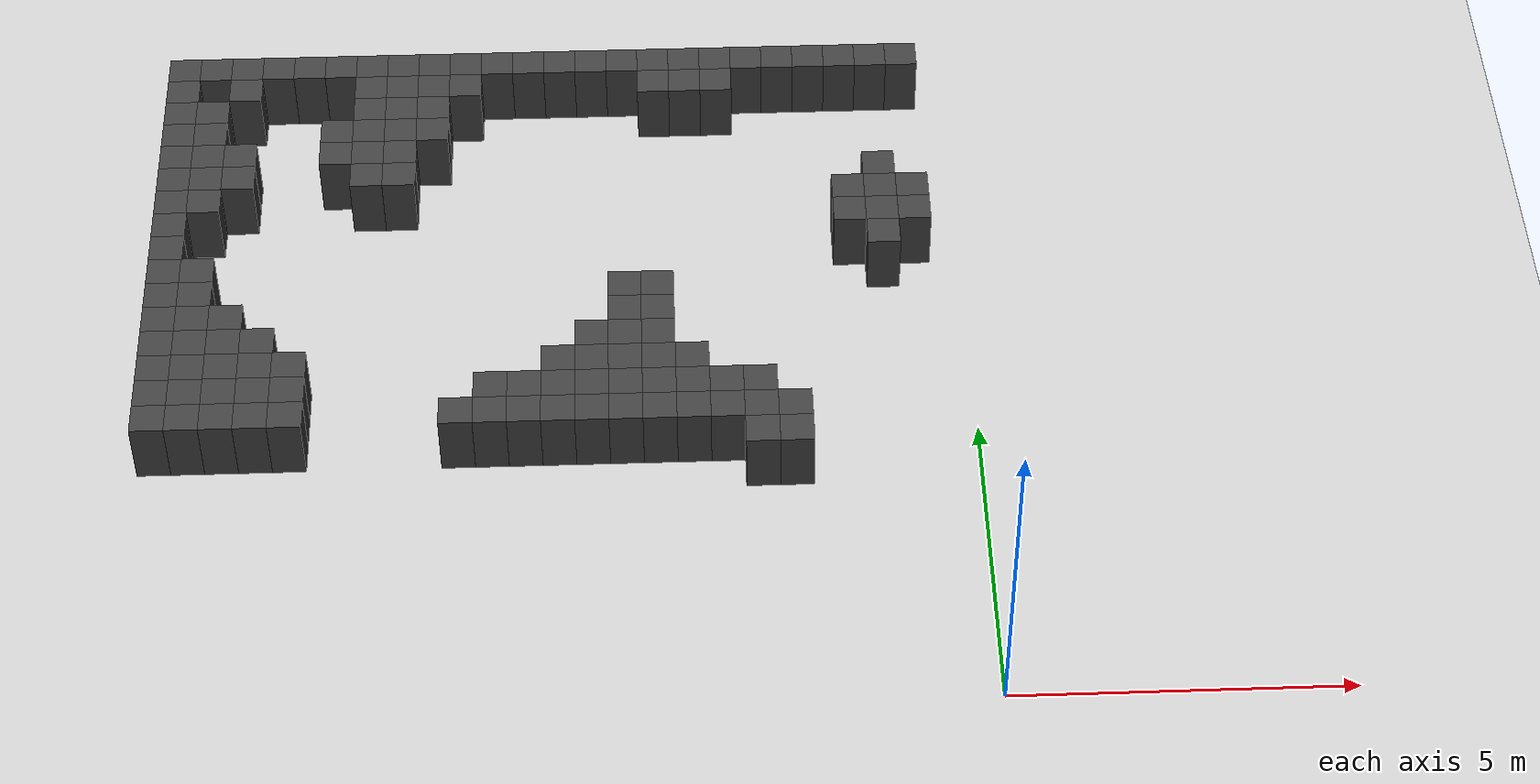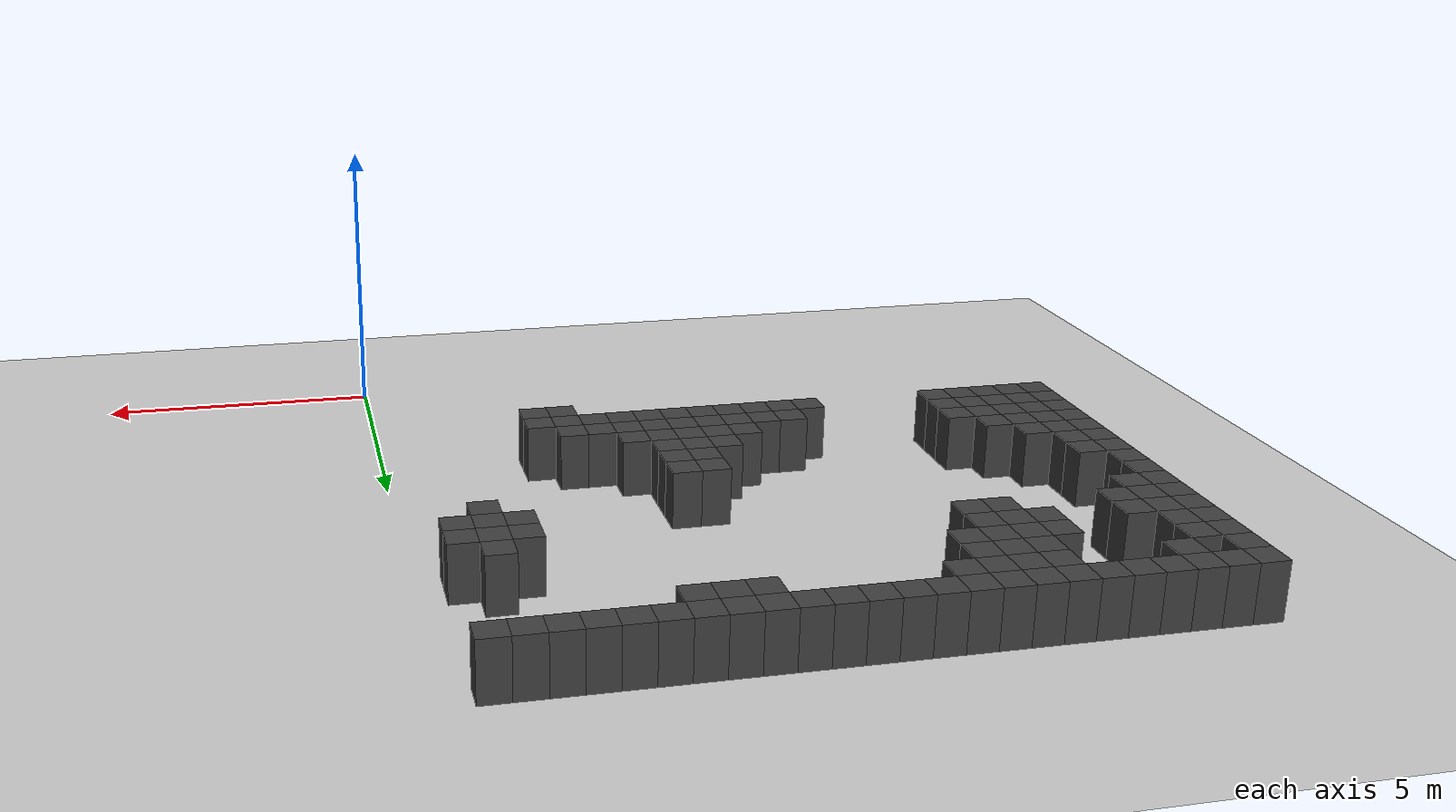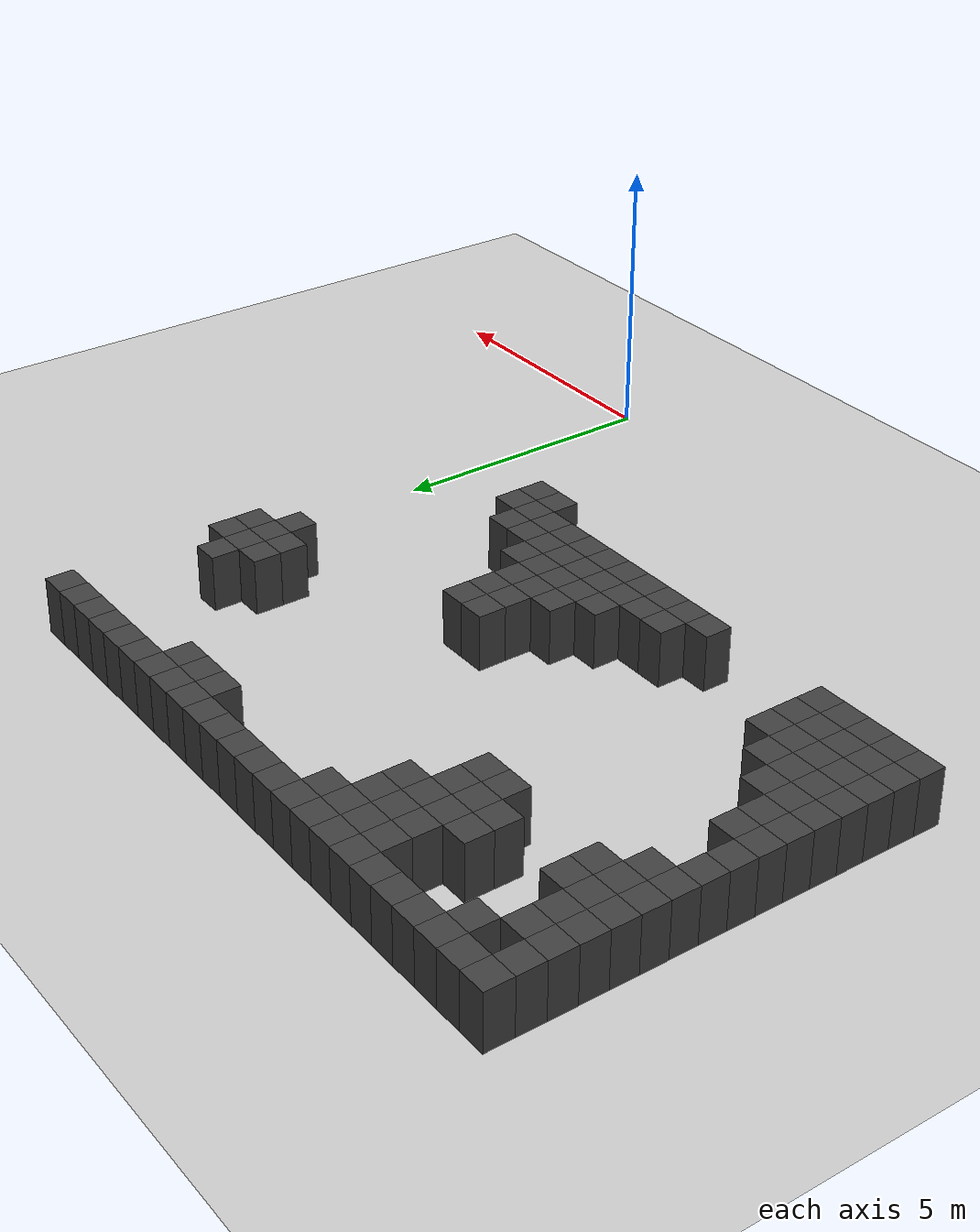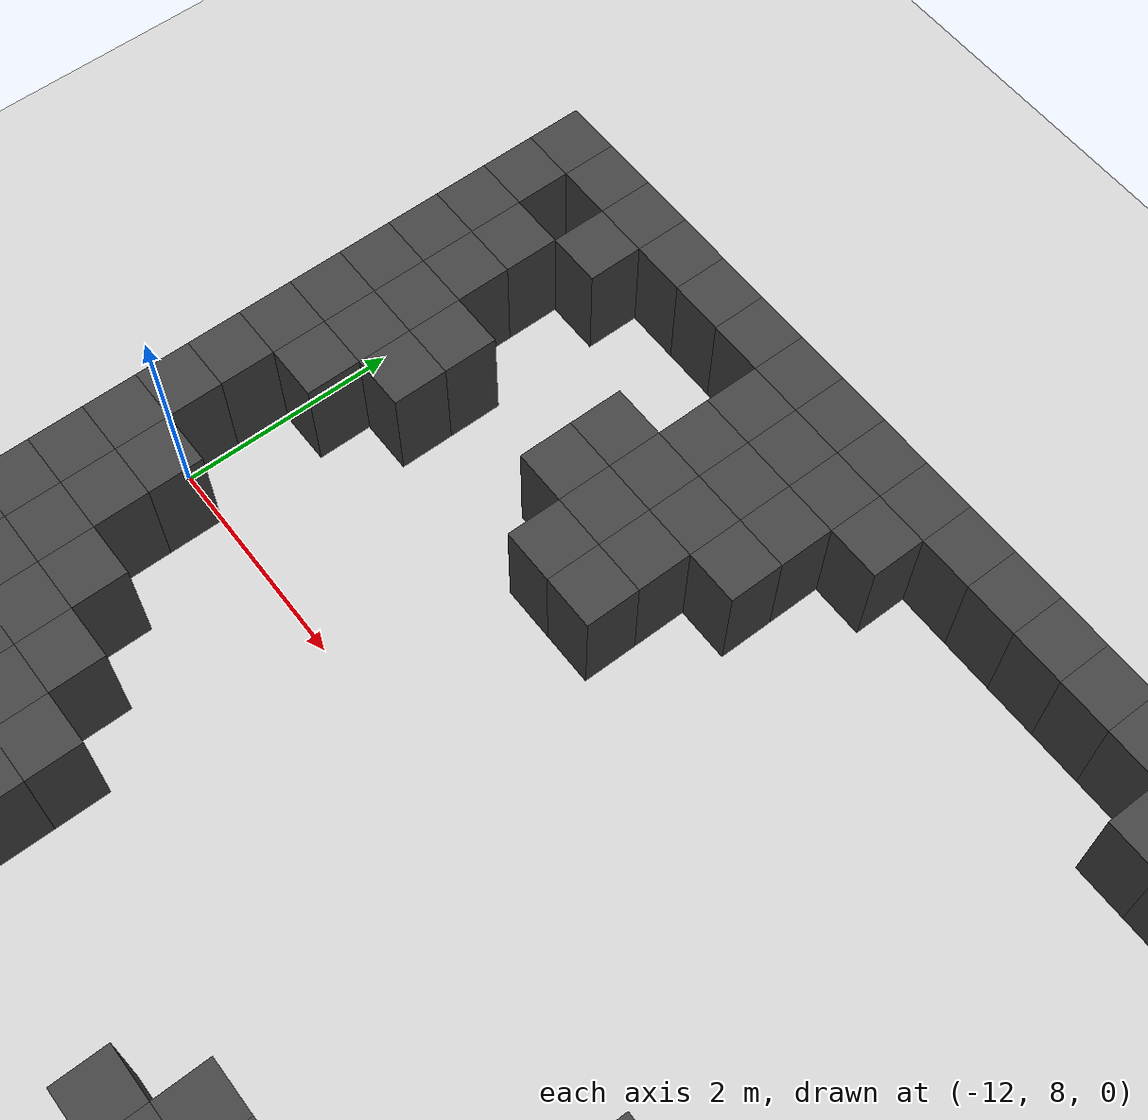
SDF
<sdf version="1.7">
 <world name="map_9544">
  <model name="ground_plane">
   <static>true</static>
   <link name="link">
    <collision name="collision">
     <geometry><plane><normal>0 0 1</normal><size>200 200</size></plane></geometry>
    </collision>
    <visual name="visual">
     <geometry><plane><normal>0 0 1</normal><size>200 200</size></plane></geometry>
     <material><ambient>0.8 0.8 0.8 1</ambient><diffuse>0.8 0.8 0.8 1</diffuse></material>
    </visual>
   </link>
  </model>
  <model name="maze_environment">
   <static>true</static>
   <link name="wall_0">
    <pose>-12.250 12.250 0.500 0 0 0</pose>
    <collision name="col"><geometry><box><size>0.5 0.5 1.0</size></box></geometry></collision>
    <visual name="vis">
     <geometry><box><size>0.5 0.5 1.0</size></box></geometry>
     <material><ambient>0.15 0.15 0.15 1</ambient><diffuse>0.25 0.25 0.25 1</diffuse></material>
    </visual>
   </link>
   <link name="wall_1">
    <pose>-11.750 12.250 0.500 0 0 0</pose>
    <collision name="col"><geometry><box><size>0.5 0.5 1.0</size></box></geometry></collision>
    <visual name="vis">
     <geometry><box><size>0.5 0.5 1.0</size></box></geometry>
     <material><ambient>0.15 0.15 0.15 1</ambient><diffuse>0.25 0.25 0.25 1</diffuse></material>
    </visual>
   </link>
   <link name="wall_2">
    <pose>-11.250 12.250 0.500 0 0 0</pose>
    <collision name="col"><geometry><box><size>0.5 0.5 1.0</size></box></geometry></collision>
    <visual name="vis">
     <geometry><box><size>0.5 0.5 1.0</size></box></geometry>
     <material><ambient>0.15 0.15 0.15 1</ambient><diffuse>0.25 0.25 0.25 1</diffuse></material>
    </visual>
   </link>
   <link name="wall_3">
    <pose>-10.750 12.250 0.500 0 0 0</pose>
    <collision name="col"><geometry><box><size>0.5 0.5 1.0</size></box></geometry></collision>
    <visual name="vis">
     <geometry><box><size>0.5 0.5 1.0</size></box></geometry>
     <material><ambient>0.15 0.15 0.15 1</ambient><diffuse>0.25 0.25 0.25 1</diffuse></material>
    </visual>
   </link>
   <link name="wall_4">
    <pose>-10.250 12.250 0.500 0 0 0</pose>
    <collision name="col"><geometry><box><size>0.5 0.5 1.0</size></box></geometry></collision>
    <visual name="vis">
     <geometry><box><size>0.5 0.5 1.0</size></box></geometry>
     <material><ambient>0.15 0.15 0.15 1</ambient><diffuse>0.25 0.25 0.25 1</diffuse></material>
    </visual>
   </link>
   <link name="wall_5">
    <pose>-9.750 12.250 0.500 0 0 0</pose>
    <collision name="col"><geometry><box><size>0.5 0.5 1.0</size></box></geometry></collision>
    <visual name="vis">
     <geometry><box><size>0.5 0.5 1.0</size></box></geometry>
     <material><ambient>0.15 0.15 0.15 1</ambient><diffuse>0.25 0.25 0.25 1</diffuse></material>
    </visual>
   </link>
   <link name="wall_6">
    <pose>-9.250 12.250 0.500 0 0 0</pose>
    <collision name="col"><geometry><box><size>0.5 0.5 1.0</size></box></geometry></collision>
    <visual name="vis">
     <geometry><box><size>0.5 0.5 1.0</size></box></geometry>
     <material><ambient>0.15 0.15 0.15 1</ambient><diffuse>0.25 0.25 0.25 1</diffuse></material>
    </visual>
   </link>
   <link name="wall_7">
    <pose>-8.750 12.250 0.500 0 0 0</pose>
    <collision name="col"><geometry><box><size>0.5 0.5 1.0</size></box></geometry></collision>
    <visual name="vis">
     <geometry><box><size>0.5 0.5 1.0</size></box></geometry>
     <material><ambient>0.15 0.15 0.15 1</ambient><diffuse>0.25 0.25 0.25 1</diffuse></material>
    </visual>
   </link>
   <link name="wall_8">
    <pose>-8.250 12.250 0.500 0 0 0</pose>
    <collision name="col"><geometry><box><size>0.5 0.5 1.0</size></box></geometry></collision>
    <visual name="vis">
     <geometry><box><size>0.5 0.5 1.0</size></box></geometry>
     <material><ambient>0.15 0.15 0.15 1</ambient><diffuse>0.25 0.25 0.25 1</diffuse></material>
    </visual>
   </link>
   <link name="wall_9">
    <pose>-7.750 12.250 0.500 0 0 0</pose>
    <collision name="col"><geometry><box><size>0.5 0.5 1.0</size></box></geometry></collision>
    <visual name="vis">
     <geometry><box><size>0.5 0.5 1.0</size></box></geometry>
     <material><ambient>0.15 0.15 0.15 1</ambient><diffuse>0.25 0.25 0.25 1</diffuse></material>
    </visual>
   </link>
   <link name="wall_10">
    <pose>-7.250 12.250 0.500 0 0 0</pose>
    <collision name="col"><geometry><box><size>0.5 0.5 1.0</size></box></geometry></collision>
    <visual name="vis">
     <geometry><box><size>0.5 0.5 1.0</size></box></geometry>
     <material><ambient>0.15 0.15 0.15 1</ambient><diffuse>0.25 0.25 0.25 1</diffuse></material>
    </visual>
   </link>
   <link name="wall_11">
    <pose>-6.750 12.250 0.500 0 0 0</pose>
    <collision name="col"><geometry><box><size>0.5 0.5 1.0</size></box></geometry></collision>
    <visual name="vis">
     <geometry><box><size>0.5 0.5 1.0</size></box></geometry>
     <material><ambient>0.15 0.15 0.15 1</ambient><diffuse>0.25 0.25 0.25 1</diffuse></material>
    </visual>
   </link>
   <link name="wall_12">
    <pose>-6.250 12.250 0.500 0 0 0</pose>
    <collision name="col"><geometry><box><size>0.5 0.5 1.0</size></box></geometry></collision>
    <visual name="vis">
     <geometry><box><size>0.5 0.5 1.0</size></box></geometry>
     <material><ambient>0.15 0.15 0.15 1</ambient><diffuse>0.25 0.25 0.25 1</diffuse></material>
    </visual>
   </link>
   <link name="wall_13">
    <pose>-5.750 12.250 0.500 0 0 0</pose>
    <collision name="col"><geometry><box><size>0.5 0.5 1.0</size></box></geometry></collision>
    <visual name="vis">
     <geometry><box><size>0.5 0.5 1.0</size></box></geometry>
     <material><ambient>0.15 0.15 0.15 1</ambient><diffuse>0.25 0.25 0.25 1</diffuse></material>
    </visual>
   </link>
   <link name="wall_14">
    <pose>-5.250 12.250 0.500 0 0 0</pose>
    <collision name="col"><geometry><box><size>0.5 0.5 1.0</size></box></geometry></collision>
    <visual name="vis">
     <geometry><box><size>0.5 0.5 1.0</size></box></geometry>
     <material><ambient>0.15 0.15 0.15 1</ambient><diffuse>0.25 0.25 0.25 1</diffuse></material>
    </visual>
   </link>
   <link name="wall_15">
    <pose>-4.750 12.250 0.500 0 0 0</pose>
    <collision name="col"><geometry><box><size>0.5 0.5 1.0</size></box></geometry></collision>
    <visual name="vis">
     <geometry><box><size>0.5 0.5 1.0</size></box></geometry>
     <material><ambient>0.15 0.15 0.15 1</ambient><diffuse>0.25 0.25 0.25 1</diffuse></material>
    </visual>
   </link>
   <link name="wall_16">
    <pose>-4.250 12.250 0.500 0 0 0</pose>
    <collision name="col"><geometry><box><size>0.5 0.5 1.0</size></box></geometry></collision>
    <visual name="vis">
     <geometry><box><size>0.5 0.5 1.0</size></box></geometry>
     <material><ambient>0.15 0.15 0.15 1</ambient><diffuse>0.25 0.25 0.25 1</diffuse></material>
    </visual>
   </link>
   <link name="wall_17">
    <pose>-3.750 12.250 0.500 0 0 0</pose>
    <collision name="col"><geometry><box><size>0.5 0.5 1.0</size></box></geometry></collision>
    <visual name="vis">
     <geometry><box><size>0.5 0.5 1.0</size></box></geometry>
     <material><ambient>0.15 0.15 0.15 1</ambient><diffuse>0.25 0.25 0.25 1</diffuse></material>
    </visual>
   </link>
   <link name="wall_18">
    <pose>-3.250 12.250 0.500 0 0 0</pose>
    <collision name="col"><geometry><box><size>0.5 0.5 1.0</size></box></geometry></collision>
    <visual name="vis">
     <geometry><box><size>0.5 0.5 1.0</size></box></geometry>
     <material><ambient>0.15 0.15 0.15 1</ambient><diffuse>0.25 0.25 0.25 1</diffuse></material>
    </visual>
   </link>
   <link name="wall_19">
    <pose>-2.750 12.250 0.500 0 0 0</pose>
    <collision name="col"><geometry><box><size>0.5 0.5 1.0</size></box></geometry></collision>
    <visual name="vis">
     <geometry><box><size>0.5 0.5 1.0</size></box></geometry>
     <material><ambient>0.15 0.15 0.15 1</ambient><diffuse>0.25 0.25 0.25 1</diffuse></material>
    </visual>
   </link>
   <link name="wall_20">
    <pose>-2.250 12.250 0.500 0 0 0</pose>
    <collision name="col"><geometry><box><size>0.5 0.5 1.0</size></box></geometry></collision>
    <visual name="vis">
     <geometry><box><size>0.5 0.5 1.0</size></box></geometry>
     <material><ambient>0.15 0.15 0.15 1</ambient><diffuse>0.25 0.25 0.25 1</diffuse></material>
    </visual>
   </link>
   <link name="wall_21">
    <pose>-1.750 12.250 0.500 0 0 0</pose>
    <collision name="col"><geometry><box><size>0.5 0.5 1.0</size></box></geometry></collision>
    <visual name="vis">
     <geometry><box><size>0.5 0.5 1.0</size></box></geometry>
     <material><ambient>0.15 0.15 0.15 1</ambient><diffuse>0.25 0.25 0.25 1</diffuse></material>
    </visual>
   </link>
   <link name="wall_22">
    <pose>-1.250 12.250 0.500 0 0 0</pose>
    <collision name="col"><geometry><box><size>0.5 0.5 1.0</size></box></geometry></collision>
    <visual name="vis">
     <geometry><box><size>0.5 0.5 1.0</size></box></geometry>
     <material><ambient>0.15 0.15 0.15 1</ambient><diffuse>0.25 0.25 0.25 1</diffuse></material>
    </visual>
   </link>
   <link name="wall_23">
    <pose>-0.750 12.250 0.500 0 0 0</pose>
    <collision name="col"><geometry><box><size>0.5 0.5 1.0</size></box></geometry></collision>
    <visual name="vis">
     <geometry><box><size>0.5 0.5 1.0</size></box></geometry>
     <material><ambient>0.15 0.15 0.15 1</ambient><diffuse>0.25 0.25 0.25 1</diffuse></material>
    </visual>
   </link>
   <link name="wall_50">
    <pose>-12.250 11.750 0.500 0 0 0</pose>
    <collision name="col"><geometry><box><size>0.5 0.5 1.0</size></box></geometry></collision>
    <visual name="vis">
     <geometry><box><size>0.5 0.5 1.0</size></box></geometry>
     <material><ambient>0.15 0.15 0.15 1</ambient><diffuse>0.25 0.25 0.25 1</diffuse></material>
    </visual>
   </link>
   <link name="wall_51">
    <pose>-11.250 11.750 0.500 0 0 0</pose>
    <collision name="col"><geometry><box><size>0.5 0.5 1.0</size></box></geometry></collision>
    <visual name="vis">
     <geometry><box><size>0.5 0.5 1.0</size></box></geometry>
     <material><ambient>0.15 0.15 0.15 1</ambient><diffuse>0.25 0.25 0.25 1</diffuse></material>
    </visual>
   </link>
   <link name="wall_52">
    <pose>-9.250 11.750 0.500 0 0 0</pose>
    <collision name="col"><geometry><box><size>0.5 0.5 1.0</size></box></geometry></collision>
    <visual name="vis">
     <geometry><box><size>0.5 0.5 1.0</size></box></geometry>
     <material><ambient>0.15 0.15 0.15 1</ambient><diffuse>0.25 0.25 0.25 1</diffuse></material>
    </visual>
   </link>
   <link name="wall_53">
    <pose>-8.750 11.750 0.500 0 0 0</pose>
    <collision name="col"><geometry><box><size>0.5 0.5 1.0</size></box></geometry></collision>
    <visual name="vis">
     <geometry><box><size>0.5 0.5 1.0</size></box></geometry>
     <material><ambient>0.15 0.15 0.15 1</ambient><diffuse>0.25 0.25 0.25 1</diffuse></material>
    </visual>
   </link>
   <link name="wall_54">
    <pose>-8.250 11.750 0.500 0 0 0</pose>
    <collision name="col"><geometry><box><size>0.5 0.5 1.0</size></box></geometry></collision>
    <visual name="vis">
     <geometry><box><size>0.5 0.5 1.0</size></box></geometry>
     <material><ambient>0.15 0.15 0.15 1</ambient><diffuse>0.25 0.25 0.25 1</diffuse></material>
    </visual>
   </link>
   <link name="wall_55">
    <pose>-7.750 11.750 0.500 0 0 0</pose>
    <collision name="col"><geometry><box><size>0.5 0.5 1.0</size></box></geometry></collision>
    <visual name="vis">
     <geometry><box><size>0.5 0.5 1.0</size></box></geometry>
     <material><ambient>0.15 0.15 0.15 1</ambient><diffuse>0.25 0.25 0.25 1</diffuse></material>
    </visual>
   </link>
   <link name="wall_56">
    <pose>-4.750 11.750 0.500 0 0 0</pose>
    <collision name="col"><geometry><box><size>0.5 0.5 1.0</size></box></geometry></collision>
    <visual name="vis">
     <geometry><box><size>0.5 0.5 1.0</size></box></geometry>
     <material><ambient>0.15 0.15 0.15 1</ambient><diffuse>0.25 0.25 0.25 1</diffuse></material>
    </visual>
   </link>
   <link name="wall_57">
    <pose>-4.250 11.750 0.500 0 0 0</pose>
    <collision name="col"><geometry><box><size>0.5 0.5 1.0</size></box></geometry></collision>
    <visual name="vis">
     <geometry><box><size>0.5 0.5 1.0</size></box></geometry>
     <material><ambient>0.15 0.15 0.15 1</ambient><diffuse>0.25 0.25 0.25 1</diffuse></material>
    </visual>
   </link>
   <link name="wall_58">
    <pose>-3.750 11.750 0.500 0 0 0</pose>
    <collision name="col"><geometry><box><size>0.5 0.5 1.0</size></box></geometry></collision>
    <visual name="vis">
     <geometry><box><size>0.5 0.5 1.0</size></box></geometry>
     <material><ambient>0.15 0.15 0.15 1</ambient><diffuse>0.25 0.25 0.25 1</diffuse></material>
    </visual>
   </link>
   <link name="wall_75">
    <pose>-12.250 11.250 0.500 0 0 0</pose>
    <collision name="col"><geometry><box><size>0.5 0.5 1.0</size></box></geometry></collision>
    <visual name="vis">
     <geometry><box><size>0.5 0.5 1.0</size></box></geometry>
     <material><ambient>0.15 0.15 0.15 1</ambient><diffuse>0.25 0.25 0.25 1</diffuse></material>
    </visual>
   </link>
   <link name="wall_76">
    <pose>-11.750 11.250 0.500 0 0 0</pose>
    <collision name="col"><geometry><box><size>0.5 0.5 1.0</size></box></geometry></collision>
    <visual name="vis">
     <geometry><box><size>0.5 0.5 1.0</size></box></geometry>
     <material><ambient>0.15 0.15 0.15 1</ambient><diffuse>0.25 0.25 0.25 1</diffuse></material>
    </visual>
   </link>
   <link name="wall_77">
    <pose>-9.250 11.250 0.500 0 0 0</pose>
    <collision name="col"><geometry><box><size>0.5 0.5 1.0</size></box></geometry></collision>
    <visual name="vis">
     <geometry><box><size>0.5 0.5 1.0</size></box></geometry>
     <material><ambient>0.15 0.15 0.15 1</ambient><diffuse>0.25 0.25 0.25 1</diffuse></material>
    </visual>
   </link>
   <link name="wall_78">
    <pose>-8.750 11.250 0.500 0 0 0</pose>
    <collision name="col"><geometry><box><size>0.5 0.5 1.0</size></box></geometry></collision>
    <visual name="vis">
     <geometry><box><size>0.5 0.5 1.0</size></box></geometry>
     <material><ambient>0.15 0.15 0.15 1</ambient><diffuse>0.25 0.25 0.25 1</diffuse></material>
    </visual>
   </link>
   <link name="wall_79">
    <pose>-8.250 11.250 0.500 0 0 0</pose>
    <collision name="col"><geometry><box><size>0.5 0.5 1.0</size></box></geometry></collision>
    <visual name="vis">
     <geometry><box><size>0.5 0.5 1.0</size></box></geometry>
     <material><ambient>0.15 0.15 0.15 1</ambient><diffuse>0.25 0.25 0.25 1</diffuse></material>
    </visual>
   </link>
   <link name="wall_91">
    <pose>-12.250 10.750 0.500 0 0 0</pose>
    <collision name="col"><geometry><box><size>0.5 0.5 1.0</size></box></geometry></collision>
    <visual name="vis">
     <geometry><box><size>0.5 0.5 1.0</size></box></geometry>
     <material><ambient>0.15 0.15 0.15 1</ambient><diffuse>0.25 0.25 0.25 1</diffuse></material>
    </visual>
   </link>
   <link name="wall_92">
    <pose>-11.750 10.750 0.500 0 0 0</pose>
    <collision name="col"><geometry><box><size>0.5 0.5 1.0</size></box></geometry></collision>
    <visual name="vis">
     <geometry><box><size>0.5 0.5 1.0</size></box></geometry>
     <material><ambient>0.15 0.15 0.15 1</ambient><diffuse>0.25 0.25 0.25 1</diffuse></material>
    </visual>
   </link>
   <link name="wall_93">
    <pose>-9.750 10.750 0.500 0 0 0</pose>
    <collision name="col"><geometry><box><size>0.5 0.5 1.0</size></box></geometry></collision>
    <visual name="vis">
     <geometry><box><size>0.5 0.5 1.0</size></box></geometry>
     <material><ambient>0.15 0.15 0.15 1</ambient><diffuse>0.25 0.25 0.25 1</diffuse></material>
    </visual>
   </link>
   <link name="wall_94">
    <pose>-9.250 10.750 0.500 0 0 0</pose>
    <collision name="col"><geometry><box><size>0.5 0.5 1.0</size></box></geometry></collision>
    <visual name="vis">
     <geometry><box><size>0.5 0.5 1.0</size></box></geometry>
     <material><ambient>0.15 0.15 0.15 1</ambient><diffuse>0.25 0.25 0.25 1</diffuse></material>
    </visual>
   </link>
   <link name="wall_95">
    <pose>-8.750 10.750 0.500 0 0 0</pose>
    <collision name="col"><geometry><box><size>0.5 0.5 1.0</size></box></geometry></collision>
    <visual name="vis">
     <geometry><box><size>0.5 0.5 1.0</size></box></geometry>
     <material><ambient>0.15 0.15 0.15 1</ambient><diffuse>0.25 0.25 0.25 1</diffuse></material>
    </visual>
   </link>
   <link name="wall_96">
    <pose>-8.250 10.750 0.500 0 0 0</pose>
    <collision name="col"><geometry><box><size>0.5 0.5 1.0</size></box></geometry></collision>
    <visual name="vis">
     <geometry><box><size>0.5 0.5 1.0</size></box></geometry>
     <material><ambient>0.15 0.15 0.15 1</ambient><diffuse>0.25 0.25 0.25 1</diffuse></material>
    </visual>
   </link>
   <link name="wall_105">
    <pose>-12.250 10.250 0.500 0 0 0</pose>
    <collision name="col"><geometry><box><size>0.5 0.5 1.0</size></box></geometry></collision>
    <visual name="vis">
     <geometry><box><size>0.5 0.5 1.0</size></box></geometry>
     <material><ambient>0.15 0.15 0.15 1</ambient><diffuse>0.25 0.25 0.25 1</diffuse></material>
    </visual>
   </link>
   <link name="wall_106">
    <pose>-11.750 10.250 0.500 0 0 0</pose>
    <collision name="col"><geometry><box><size>0.5 0.5 1.0</size></box></geometry></collision>
    <visual name="vis">
     <geometry><box><size>0.5 0.5 1.0</size></box></geometry>
     <material><ambient>0.15 0.15 0.15 1</ambient><diffuse>0.25 0.25 0.25 1</diffuse></material>
    </visual>
   </link>
   <link name="wall_107">
    <pose>-11.250 10.250 0.500 0 0 0</pose>
    <collision name="col"><geometry><box><size>0.5 0.5 1.0</size></box></geometry></collision>
    <visual name="vis">
     <geometry><box><size>0.5 0.5 1.0</size></box></geometry>
     <material><ambient>0.15 0.15 0.15 1</ambient><diffuse>0.25 0.25 0.25 1</diffuse></material>
    </visual>
   </link>
   <link name="wall_108">
    <pose>-9.750 10.250 0.500 0 0 0</pose>
    <collision name="col"><geometry><box><size>0.5 0.5 1.0</size></box></geometry></collision>
    <visual name="vis">
     <geometry><box><size>0.5 0.5 1.0</size></box></geometry>
     <material><ambient>0.15 0.15 0.15 1</ambient><diffuse>0.25 0.25 0.25 1</diffuse></material>
    </visual>
   </link>
   <link name="wall_109">
    <pose>-9.250 10.250 0.500 0 0 0</pose>
    <collision name="col"><geometry><box><size>0.5 0.5 1.0</size></box></geometry></collision>
    <visual name="vis">
     <geometry><box><size>0.5 0.5 1.0</size></box></geometry>
     <material><ambient>0.15 0.15 0.15 1</ambient><diffuse>0.25 0.25 0.25 1</diffuse></material>
    </visual>
   </link>
   <link name="wall_110">
    <pose>-8.750 10.250 0.500 0 0 0</pose>
    <collision name="col"><geometry><box><size>0.5 0.5 1.0</size></box></geometry></collision>
    <visual name="vis">
     <geometry><box><size>0.5 0.5 1.0</size></box></geometry>
     <material><ambient>0.15 0.15 0.15 1</ambient><diffuse>0.25 0.25 0.25 1</diffuse></material>
    </visual>
   </link>
   <link name="wall_117">
    <pose>-12.250 9.750 0.500 0 0 0</pose>
    <collision name="col"><geometry><box><size>0.5 0.5 1.0</size></box></geometry></collision>
    <visual name="vis">
     <geometry><box><size>0.5 0.5 1.0</size></box></geometry>
     <material><ambient>0.15 0.15 0.15 1</ambient><diffuse>0.25 0.25 0.25 1</diffuse></material>
    </visual>
   </link>
   <link name="wall_118">
    <pose>-11.750 9.750 0.500 0 0 0</pose>
    <collision name="col"><geometry><box><size>0.5 0.5 1.0</size></box></geometry></collision>
    <visual name="vis">
     <geometry><box><size>0.5 0.5 1.0</size></box></geometry>
     <material><ambient>0.15 0.15 0.15 1</ambient><diffuse>0.25 0.25 0.25 1</diffuse></material>
    </visual>
   </link>
   <link name="wall_119">
    <pose>-11.250 9.750 0.500 0 0 0</pose>
    <collision name="col"><geometry><box><size>0.5 0.5 1.0</size></box></geometry></collision>
    <visual name="vis">
     <geometry><box><size>0.5 0.5 1.0</size></box></geometry>
     <material><ambient>0.15 0.15 0.15 1</ambient><diffuse>0.25 0.25 0.25 1</diffuse></material>
    </visual>
   </link>
   <link name="wall_120">
    <pose>-9.250 9.750 0.500 0 0 0</pose>
    <collision name="col"><geometry><box><size>0.5 0.5 1.0</size></box></geometry></collision>
    <visual name="vis">
     <geometry><box><size>0.5 0.5 1.0</size></box></geometry>
     <material><ambient>0.15 0.15 0.15 1</ambient><diffuse>0.25 0.25 0.25 1</diffuse></material>
    </visual>
   </link>
   <link name="wall_121">
    <pose>-8.750 9.750 0.500 0 0 0</pose>
    <collision name="col"><geometry><box><size>0.5 0.5 1.0</size></box></geometry></collision>
    <visual name="vis">
     <geometry><box><size>0.5 0.5 1.0</size></box></geometry>
     <material><ambient>0.15 0.15 0.15 1</ambient><diffuse>0.25 0.25 0.25 1</diffuse></material>
    </visual>
   </link>
   <link name="wall_122">
    <pose>-1.250 9.750 0.500 0 0 0</pose>
    <collision name="col"><geometry><box><size>0.5 0.5 1.0</size></box></geometry></collision>
    <visual name="vis">
     <geometry><box><size>0.5 0.5 1.0</size></box></geometry>
     <material><ambient>0.15 0.15 0.15 1</ambient><diffuse>0.25 0.25 0.25 1</diffuse></material>
    </visual>
   </link>
   <link name="wall_126">
    <pose>-12.250 9.250 0.500 0 0 0</pose>
    <collision name="col"><geometry><box><size>0.5 0.5 1.0</size></box></geometry></collision>
    <visual name="vis">
     <geometry><box><size>0.5 0.5 1.0</size></box></geometry>
     <material><ambient>0.15 0.15 0.15 1</ambient><diffuse>0.25 0.25 0.25 1</diffuse></material>
    </visual>
   </link>
   <link name="wall_127">
    <pose>-11.750 9.250 0.500 0 0 0</pose>
    <collision name="col"><geometry><box><size>0.5 0.5 1.0</size></box></geometry></collision>
    <visual name="vis">
     <geometry><box><size>0.5 0.5 1.0</size></box></geometry>
     <material><ambient>0.15 0.15 0.15 1</ambient><diffuse>0.25 0.25 0.25 1</diffuse></material>
    </visual>
   </link>
   <link name="wall_128">
    <pose>-1.750 9.250 0.500 0 0 0</pose>
    <collision name="col"><geometry><box><size>0.5 0.5 1.0</size></box></geometry></collision>
    <visual name="vis">
     <geometry><box><size>0.5 0.5 1.0</size></box></geometry>
     <material><ambient>0.15 0.15 0.15 1</ambient><diffuse>0.25 0.25 0.25 1</diffuse></material>
    </visual>
   </link>
   <link name="wall_129">
    <pose>-1.250 9.250 0.500 0 0 0</pose>
    <collision name="col"><geometry><box><size>0.5 0.5 1.0</size></box></geometry></collision>
    <visual name="vis">
     <geometry><box><size>0.5 0.5 1.0</size></box></geometry>
     <material><ambient>0.15 0.15 0.15 1</ambient><diffuse>0.25 0.25 0.25 1</diffuse></material>
    </visual>
   </link>
   <link name="wall_130">
    <pose>-0.750 9.250 0.500 0 0 0</pose>
    <collision name="col"><geometry><box><size>0.5 0.5 1.0</size></box></geometry></collision>
    <visual name="vis">
     <geometry><box><size>0.5 0.5 1.0</size></box></geometry>
     <material><ambient>0.15 0.15 0.15 1</ambient><diffuse>0.25 0.25 0.25 1</diffuse></material>
    </visual>
   </link>
   <link name="wall_135">
    <pose>-12.250 8.750 0.500 0 0 0</pose>
    <collision name="col"><geometry><box><size>0.5 0.5 1.0</size></box></geometry></collision>
    <visual name="vis">
     <geometry><box><size>0.5 0.5 1.0</size></box></geometry>
     <material><ambient>0.15 0.15 0.15 1</ambient><diffuse>0.25 0.25 0.25 1</diffuse></material>
    </visual>
   </link>
   <link name="wall_136">
    <pose>-1.750 8.750 0.500 0 0 0</pose>
    <collision name="col"><geometry><box><size>0.5 0.5 1.0</size></box></geometry></collision>
    <visual name="vis">
     <geometry><box><size>0.5 0.5 1.0</size></box></geometry>
     <material><ambient>0.15 0.15 0.15 1</ambient><diffuse>0.25 0.25 0.25 1</diffuse></material>
    </visual>
   </link>
   <link name="wall_137">
    <pose>-1.250 8.750 0.500 0 0 0</pose>
    <collision name="col"><geometry><box><size>0.5 0.5 1.0</size></box></geometry></collision>
    <visual name="vis">
     <geometry><box><size>0.5 0.5 1.0</size></box></geometry>
     <material><ambient>0.15 0.15 0.15 1</ambient><diffuse>0.25 0.25 0.25 1</diffuse></material>
    </visual>
   </link>
   <link name="wall_138">
    <pose>-0.750 8.750 0.500 0 0 0</pose>
    <collision name="col"><geometry><box><size>0.5 0.5 1.0</size></box></geometry></collision>
    <visual name="vis">
     <geometry><box><size>0.5 0.5 1.0</size></box></geometry>
     <material><ambient>0.15 0.15 0.15 1</ambient><diffuse>0.25 0.25 0.25 1</diffuse></material>
    </visual>
   </link>
   <link name="wall_144">
    <pose>-12.250 8.250 0.500 0 0 0</pose>
    <collision name="col"><geometry><box><size>0.5 0.5 1.0</size></box></geometry></collision>
    <visual name="vis">
     <geometry><box><size>0.5 0.5 1.0</size></box></geometry>
     <material><ambient>0.15 0.15 0.15 1</ambient><diffuse>0.25 0.25 0.25 1</diffuse></material>
    </visual>
   </link>
   <link name="wall_145">
    <pose>-1.250 8.250 0.500 0 0 0</pose>
    <collision name="col"><geometry><box><size>0.5 0.5 1.0</size></box></geometry></collision>
    <visual name="vis">
     <geometry><box><size>0.5 0.5 1.0</size></box></geometry>
     <material><ambient>0.15 0.15 0.15 1</ambient><diffuse>0.25 0.25 0.25 1</diffuse></material>
    </visual>
   </link>
   <link name="wall_154">
    <pose>-12.250 7.750 0.500 0 0 0</pose>
    <collision name="col"><geometry><box><size>0.5 0.5 1.0</size></box></geometry></collision>
    <visual name="vis">
     <geometry><box><size>0.5 0.5 1.0</size></box></geometry>
     <material><ambient>0.15 0.15 0.15 1</ambient><diffuse>0.25 0.25 0.25 1</diffuse></material>
    </visual>
   </link>
   <link name="wall_155">
    <pose>-11.750 7.750 0.500 0 0 0</pose>
    <collision name="col"><geometry><box><size>0.5 0.5 1.0</size></box></geometry></collision>
    <visual name="vis">
     <geometry><box><size>0.5 0.5 1.0</size></box></geometry>
     <material><ambient>0.15 0.15 0.15 1</ambient><diffuse>0.25 0.25 0.25 1</diffuse></material>
    </visual>
   </link>
   <link name="wall_165">
    <pose>-12.250 7.250 0.500 0 0 0</pose>
    <collision name="col"><geometry><box><size>0.5 0.5 1.0</size></box></geometry></collision>
    <visual name="vis">
     <geometry><box><size>0.5 0.5 1.0</size></box></geometry>
     <material><ambient>0.15 0.15 0.15 1</ambient><diffuse>0.25 0.25 0.25 1</diffuse></material>
    </visual>
   </link>
   <link name="wall_166">
    <pose>-11.750 7.250 0.500 0 0 0</pose>
    <collision name="col"><geometry><box><size>0.5 0.5 1.0</size></box></geometry></collision>
    <visual name="vis">
     <geometry><box><size>0.5 0.5 1.0</size></box></geometry>
     <material><ambient>0.15 0.15 0.15 1</ambient><diffuse>0.25 0.25 0.25 1</diffuse></material>
    </visual>
   </link>
   <link name="wall_167">
    <pose>-5.250 7.250 0.500 0 0 0</pose>
    <collision name="col"><geometry><box><size>0.5 0.5 1.0</size></box></geometry></collision>
    <visual name="vis">
     <geometry><box><size>0.5 0.5 1.0</size></box></geometry>
     <material><ambient>0.15 0.15 0.15 1</ambient><diffuse>0.25 0.25 0.25 1</diffuse></material>
    </visual>
   </link>
   <link name="wall_168">
    <pose>-4.750 7.250 0.500 0 0 0</pose>
    <collision name="col"><geometry><box><size>0.5 0.5 1.0</size></box></geometry></collision>
    <visual name="vis">
     <geometry><box><size>0.5 0.5 1.0</size></box></geometry>
     <material><ambient>0.15 0.15 0.15 1</ambient><diffuse>0.25 0.25 0.25 1</diffuse></material>
    </visual>
   </link>
   <link name="wall_176">
    <pose>-12.250 6.750 0.500 0 0 0</pose>
    <collision name="col"><geometry><box><size>0.5 0.5 1.0</size></box></geometry></collision>
    <visual name="vis">
     <geometry><box><size>0.5 0.5 1.0</size></box></geometry>
     <material><ambient>0.15 0.15 0.15 1</ambient><diffuse>0.25 0.25 0.25 1</diffuse></material>
    </visual>
   </link>
   <link name="wall_177">
    <pose>-11.750 6.750 0.500 0 0 0</pose>
    <collision name="col"><geometry><box><size>0.5 0.5 1.0</size></box></geometry></collision>
    <visual name="vis">
     <geometry><box><size>0.5 0.5 1.0</size></box></geometry>
     <material><ambient>0.15 0.15 0.15 1</ambient><diffuse>0.25 0.25 0.25 1</diffuse></material>
    </visual>
   </link>
   <link name="wall_178">
    <pose>-11.250 6.750 0.500 0 0 0</pose>
    <collision name="col"><geometry><box><size>0.5 0.5 1.0</size></box></geometry></collision>
    <visual name="vis">
     <geometry><box><size>0.5 0.5 1.0</size></box></geometry>
     <material><ambient>0.15 0.15 0.15 1</ambient><diffuse>0.25 0.25 0.25 1</diffuse></material>
    </visual>
   </link>
   <link name="wall_179">
    <pose>-5.250 6.750 0.500 0 0 0</pose>
    <collision name="col"><geometry><box><size>0.5 0.5 1.0</size></box></geometry></collision>
    <visual name="vis">
     <geometry><box><size>0.5 0.5 1.0</size></box></geometry>
     <material><ambient>0.15 0.15 0.15 1</ambient><diffuse>0.25 0.25 0.25 1</diffuse></material>
    </visual>
   </link>
   <link name="wall_180">
    <pose>-4.750 6.750 0.500 0 0 0</pose>
    <collision name="col"><geometry><box><size>0.5 0.5 1.0</size></box></geometry></collision>
    <visual name="vis">
     <geometry><box><size>0.5 0.5 1.0</size></box></geometry>
     <material><ambient>0.15 0.15 0.15 1</ambient><diffuse>0.25 0.25 0.25 1</diffuse></material>
    </visual>
   </link>
   <link name="wall_189">
    <pose>-12.250 6.250 0.500 0 0 0</pose>
    <collision name="col"><geometry><box><size>0.5 0.5 1.0</size></box></geometry></collision>
    <visual name="vis">
     <geometry><box><size>0.5 0.5 1.0</size></box></geometry>
     <material><ambient>0.15 0.15 0.15 1</ambient><diffuse>0.25 0.25 0.25 1</diffuse></material>
    </visual>
   </link>
   <link name="wall_190">
    <pose>-11.750 6.250 0.500 0 0 0</pose>
    <collision name="col"><geometry><box><size>0.5 0.5 1.0</size></box></geometry></collision>
    <visual name="vis">
     <geometry><box><size>0.5 0.5 1.0</size></box></geometry>
     <material><ambient>0.15 0.15 0.15 1</ambient><diffuse>0.25 0.25 0.25 1</diffuse></material>
    </visual>
   </link>
   <link name="wall_191">
    <pose>-11.250 6.250 0.500 0 0 0</pose>
    <collision name="col"><geometry><box><size>0.5 0.5 1.0</size></box></geometry></collision>
    <visual name="vis">
     <geometry><box><size>0.5 0.5 1.0</size></box></geometry>
     <material><ambient>0.15 0.15 0.15 1</ambient><diffuse>0.25 0.25 0.25 1</diffuse></material>
    </visual>
   </link>
   <link name="wall_192">
    <pose>-10.750 6.250 0.500 0 0 0</pose>
    <collision name="col"><geometry><box><size>0.5 0.5 1.0</size></box></geometry></collision>
    <visual name="vis">
     <geometry><box><size>0.5 0.5 1.0</size></box></geometry>
     <material><ambient>0.15 0.15 0.15 1</ambient><diffuse>0.25 0.25 0.25 1</diffuse></material>
    </visual>
   </link>
   <link name="wall_193">
    <pose>-5.750 6.250 0.500 0 0 0</pose>
    <collision name="col"><geometry><box><size>0.5 0.5 1.0</size></box></geometry></collision>
    <visual name="vis">
     <geometry><box><size>0.5 0.5 1.0</size></box></geometry>
     <material><ambient>0.15 0.15 0.15 1</ambient><diffuse>0.25 0.25 0.25 1</diffuse></material>
    </visual>
   </link>
   <link name="wall_194">
    <pose>-5.250 6.250 0.500 0 0 0</pose>
    <collision name="col"><geometry><box><size>0.5 0.5 1.0</size></box></geometry></collision>
    <visual name="vis">
     <geometry><box><size>0.5 0.5 1.0</size></box></geometry>
     <material><ambient>0.15 0.15 0.15 1</ambient><diffuse>0.25 0.25 0.25 1</diffuse></material>
    </visual>
   </link>
   <link name="wall_195">
    <pose>-4.750 6.250 0.500 0 0 0</pose>
    <collision name="col"><geometry><box><size>0.5 0.5 1.0</size></box></geometry></collision>
    <visual name="vis">
     <geometry><box><size>0.5 0.5 1.0</size></box></geometry>
     <material><ambient>0.15 0.15 0.15 1</ambient><diffuse>0.25 0.25 0.25 1</diffuse></material>
    </visual>
   </link>
   <link name="wall_204">
    <pose>-12.250 5.750 0.500 0 0 0</pose>
    <collision name="col"><geometry><box><size>0.5 0.5 1.0</size></box></geometry></collision>
    <visual name="vis">
     <geometry><box><size>0.5 0.5 1.0</size></box></geometry>
     <material><ambient>0.15 0.15 0.15 1</ambient><diffuse>0.25 0.25 0.25 1</diffuse></material>
    </visual>
   </link>
   <link name="wall_205">
    <pose>-11.750 5.750 0.500 0 0 0</pose>
    <collision name="col"><geometry><box><size>0.5 0.5 1.0</size></box></geometry></collision>
    <visual name="vis">
     <geometry><box><size>0.5 0.5 1.0</size></box></geometry>
     <material><ambient>0.15 0.15 0.15 1</ambient><diffuse>0.25 0.25 0.25 1</diffuse></material>
    </visual>
   </link>
   <link name="wall_206">
    <pose>-11.250 5.750 0.500 0 0 0</pose>
    <collision name="col"><geometry><box><size>0.5 0.5 1.0</size></box></geometry></collision>
    <visual name="vis">
     <geometry><box><size>0.5 0.5 1.0</size></box></geometry>
     <material><ambient>0.15 0.15 0.15 1</ambient><diffuse>0.25 0.25 0.25 1</diffuse></material>
    </visual>
   </link>
   <link name="wall_207">
    <pose>-10.750 5.750 0.500 0 0 0</pose>
    <collision name="col"><geometry><box><size>0.5 0.5 1.0</size></box></geometry></collision>
    <visual name="vis">
     <geometry><box><size>0.5 0.5 1.0</size></box></geometry>
     <material><ambient>0.15 0.15 0.15 1</ambient><diffuse>0.25 0.25 0.25 1</diffuse></material>
    </visual>
   </link>
   <link name="wall_208">
    <pose>-10.250 5.750 0.500 0 0 0</pose>
    <collision name="col"><geometry><box><size>0.5 0.5 1.0</size></box></geometry></collision>
    <visual name="vis">
     <geometry><box><size>0.5 0.5 1.0</size></box></geometry>
     <material><ambient>0.15 0.15 0.15 1</ambient><diffuse>0.25 0.25 0.25 1</diffuse></material>
    </visual>
   </link>
   <link name="wall_209">
    <pose>-6.250 5.750 0.500 0 0 0</pose>
    <collision name="col"><geometry><box><size>0.5 0.5 1.0</size></box></geometry></collision>
    <visual name="vis">
     <geometry><box><size>0.5 0.5 1.0</size></box></geometry>
     <material><ambient>0.15 0.15 0.15 1</ambient><diffuse>0.25 0.25 0.25 1</diffuse></material>
    </visual>
   </link>
   <link name="wall_210">
    <pose>-5.750 5.750 0.500 0 0 0</pose>
    <collision name="col"><geometry><box><size>0.5 0.5 1.0</size></box></geometry></collision>
    <visual name="vis">
     <geometry><box><size>0.5 0.5 1.0</size></box></geometry>
     <material><ambient>0.15 0.15 0.15 1</ambient><diffuse>0.25 0.25 0.25 1</diffuse></material>
    </visual>
   </link>
   <link name="wall_211">
    <pose>-5.250 5.750 0.500 0 0 0</pose>
    <collision name="col"><geometry><box><size>0.5 0.5 1.0</size></box></geometry></collision>
    <visual name="vis">
     <geometry><box><size>0.5 0.5 1.0</size></box></geometry>
     <material><ambient>0.15 0.15 0.15 1</ambient><diffuse>0.25 0.25 0.25 1</diffuse></material>
    </visual>
   </link>
   <link name="wall_212">
    <pose>-4.750 5.750 0.500 0 0 0</pose>
    <collision name="col"><geometry><box><size>0.5 0.5 1.0</size></box></geometry></collision>
    <visual name="vis">
     <geometry><box><size>0.5 0.5 1.0</size></box></geometry>
     <material><ambient>0.15 0.15 0.15 1</ambient><diffuse>0.25 0.25 0.25 1</diffuse></material>
    </visual>
   </link>
   <link name="wall_213">
    <pose>-4.250 5.750 0.500 0 0 0</pose>
    <collision name="col"><geometry><box><size>0.5 0.5 1.0</size></box></geometry></collision>
    <visual name="vis">
     <geometry><box><size>0.5 0.5 1.0</size></box></geometry>
     <material><ambient>0.15 0.15 0.15 1</ambient><diffuse>0.25 0.25 0.25 1</diffuse></material>
    </visual>
   </link>
   <link name="wall_223">
    <pose>-12.250 5.250 0.500 0 0 0</pose>
    <collision name="col"><geometry><box><size>0.5 0.5 1.0</size></box></geometry></collision>
    <visual name="vis">
     <geometry><box><size>0.5 0.5 1.0</size></box></geometry>
     <material><ambient>0.15 0.15 0.15 1</ambient><diffuse>0.25 0.25 0.25 1</diffuse></material>
    </visual>
   </link>
   <link name="wall_224">
    <pose>-11.750 5.250 0.500 0 0 0</pose>
    <collision name="col"><geometry><box><size>0.5 0.5 1.0</size></box></geometry></collision>
    <visual name="vis">
     <geometry><box><size>0.5 0.5 1.0</size></box></geometry>
     <material><ambient>0.15 0.15 0.15 1</ambient><diffuse>0.25 0.25 0.25 1</diffuse></material>
    </visual>
   </link>
   <link name="wall_225">
    <pose>-11.250 5.250 0.500 0 0 0</pose>
    <collision name="col"><geometry><box><size>0.5 0.5 1.0</size></box></geometry></collision>
    <visual name="vis">
     <geometry><box><size>0.5 0.5 1.0</size></box></geometry>
     <material><ambient>0.15 0.15 0.15 1</ambient><diffuse>0.25 0.25 0.25 1</diffuse></material>
    </visual>
   </link>
   <link name="wall_226">
    <pose>-10.750 5.250 0.500 0 0 0</pose>
    <collision name="col"><geometry><box><size>0.5 0.5 1.0</size></box></geometry></collision>
    <visual name="vis">
     <geometry><box><size>0.5 0.5 1.0</size></box></geometry>
     <material><ambient>0.15 0.15 0.15 1</ambient><diffuse>0.25 0.25 0.25 1</diffuse></material>
    </visual>
   </link>
   <link name="wall_227">
    <pose>-10.250 5.250 0.500 0 0 0</pose>
    <collision name="col"><geometry><box><size>0.5 0.5 1.0</size></box></geometry></collision>
    <visual name="vis">
     <geometry><box><size>0.5 0.5 1.0</size></box></geometry>
     <material><ambient>0.15 0.15 0.15 1</ambient><diffuse>0.25 0.25 0.25 1</diffuse></material>
    </visual>
   </link>
   <link name="wall_228">
    <pose>-7.250 5.250 0.500 0 0 0</pose>
    <collision name="col"><geometry><box><size>0.5 0.5 1.0</size></box></geometry></collision>
    <visual name="vis">
     <geometry><box><size>0.5 0.5 1.0</size></box></geometry>
     <material><ambient>0.15 0.15 0.15 1</ambient><diffuse>0.25 0.25 0.25 1</diffuse></material>
    </visual>
   </link>
   <link name="wall_229">
    <pose>-6.750 5.250 0.500 0 0 0</pose>
    <collision name="col"><geometry><box><size>0.5 0.5 1.0</size></box></geometry></collision>
    <visual name="vis">
     <geometry><box><size>0.5 0.5 1.0</size></box></geometry>
     <material><ambient>0.15 0.15 0.15 1</ambient><diffuse>0.25 0.25 0.25 1</diffuse></material>
    </visual>
   </link>
   <link name="wall_230">
    <pose>-6.250 5.250 0.500 0 0 0</pose>
    <collision name="col"><geometry><box><size>0.5 0.5 1.0</size></box></geometry></collision>
    <visual name="vis">
     <geometry><box><size>0.5 0.5 1.0</size></box></geometry>
     <material><ambient>0.15 0.15 0.15 1</ambient><diffuse>0.25 0.25 0.25 1</diffuse></material>
    </visual>
   </link>
   <link name="wall_231">
    <pose>-5.750 5.250 0.500 0 0 0</pose>
    <collision name="col"><geometry><box><size>0.5 0.5 1.0</size></box></geometry></collision>
    <visual name="vis">
     <geometry><box><size>0.5 0.5 1.0</size></box></geometry>
     <material><ambient>0.15 0.15 0.15 1</ambient><diffuse>0.25 0.25 0.25 1</diffuse></material>
    </visual>
   </link>
   <link name="wall_232">
    <pose>-5.250 5.250 0.500 0 0 0</pose>
    <collision name="col"><geometry><box><size>0.5 0.5 1.0</size></box></geometry></collision>
    <visual name="vis">
     <geometry><box><size>0.5 0.5 1.0</size></box></geometry>
     <material><ambient>0.15 0.15 0.15 1</ambient><diffuse>0.25 0.25 0.25 1</diffuse></material>
    </visual>
   </link>
   <link name="wall_233">
    <pose>-4.750 5.250 0.500 0 0 0</pose>
    <collision name="col"><geometry><box><size>0.5 0.5 1.0</size></box></geometry></collision>
    <visual name="vis">
     <geometry><box><size>0.5 0.5 1.0</size></box></geometry>
     <material><ambient>0.15 0.15 0.15 1</ambient><diffuse>0.25 0.25 0.25 1</diffuse></material>
    </visual>
   </link>
   <link name="wall_234">
    <pose>-4.250 5.250 0.500 0 0 0</pose>
    <collision name="col"><geometry><box><size>0.5 0.5 1.0</size></box></geometry></collision>
    <visual name="vis">
     <geometry><box><size>0.5 0.5 1.0</size></box></geometry>
     <material><ambient>0.15 0.15 0.15 1</ambient><diffuse>0.25 0.25 0.25 1</diffuse></material>
    </visual>
   </link>
   <link name="wall_235">
    <pose>-3.750 5.250 0.500 0 0 0</pose>
    <collision name="col"><geometry><box><size>0.5 0.5 1.0</size></box></geometry></collision>
    <visual name="vis">
     <geometry><box><size>0.5 0.5 1.0</size></box></geometry>
     <material><ambient>0.15 0.15 0.15 1</ambient><diffuse>0.25 0.25 0.25 1</diffuse></material>
    </visual>
   </link>
   <link name="wall_236">
    <pose>-3.250 5.250 0.500 0 0 0</pose>
    <collision name="col"><geometry><box><size>0.5 0.5 1.0</size></box></geometry></collision>
    <visual name="vis">
     <geometry><box><size>0.5 0.5 1.0</size></box></geometry>
     <material><ambient>0.15 0.15 0.15 1</ambient><diffuse>0.25 0.25 0.25 1</diffuse></material>
    </visual>
   </link>
   <link name="wall_244">
    <pose>-12.250 4.750 0.500 0 0 0</pose>
    <collision name="col"><geometry><box><size>0.5 0.5 1.0</size></box></geometry></collision>
    <visual name="vis">
     <geometry><box><size>0.5 0.5 1.0</size></box></geometry>
     <material><ambient>0.15 0.15 0.15 1</ambient><diffuse>0.25 0.25 0.25 1</diffuse></material>
    </visual>
   </link>
   <link name="wall_245">
    <pose>-11.750 4.750 0.500 0 0 0</pose>
    <collision name="col"><geometry><box><size>0.5 0.5 1.0</size></box></geometry></collision>
    <visual name="vis">
     <geometry><box><size>0.5 0.5 1.0</size></box></geometry>
     <material><ambient>0.15 0.15 0.15 1</ambient><diffuse>0.25 0.25 0.25 1</diffuse></material>
    </visual>
   </link>
   <link name="wall_246">
    <pose>-11.250 4.750 0.500 0 0 0</pose>
    <collision name="col"><geometry><box><size>0.5 0.5 1.0</size></box></geometry></collision>
    <visual name="vis">
     <geometry><box><size>0.5 0.5 1.0</size></box></geometry>
     <material><ambient>0.15 0.15 0.15 1</ambient><diffuse>0.25 0.25 0.25 1</diffuse></material>
    </visual>
   </link>
   <link name="wall_247">
    <pose>-10.750 4.750 0.500 0 0 0</pose>
    <collision name="col"><geometry><box><size>0.5 0.5 1.0</size></box></geometry></collision>
    <visual name="vis">
     <geometry><box><size>0.5 0.5 1.0</size></box></geometry>
     <material><ambient>0.15 0.15 0.15 1</ambient><diffuse>0.25 0.25 0.25 1</diffuse></material>
    </visual>
   </link>
   <link name="wall_248">
    <pose>-10.250 4.750 0.500 0 0 0</pose>
    <collision name="col"><geometry><box><size>0.5 0.5 1.0</size></box></geometry></collision>
    <visual name="vis">
     <geometry><box><size>0.5 0.5 1.0</size></box></geometry>
     <material><ambient>0.15 0.15 0.15 1</ambient><diffuse>0.25 0.25 0.25 1</diffuse></material>
    </visual>
   </link>
   <link name="wall_249">
    <pose>-7.750 4.750 0.500 0 0 0</pose>
    <collision name="col"><geometry><box><size>0.5 0.5 1.0</size></box></geometry></collision>
    <visual name="vis">
     <geometry><box><size>0.5 0.5 1.0</size></box></geometry>
     <material><ambient>0.15 0.15 0.15 1</ambient><diffuse>0.25 0.25 0.25 1</diffuse></material>
    </visual>
   </link>
   <link name="wall_250">
    <pose>-7.250 4.750 0.500 0 0 0</pose>
    <collision name="col"><geometry><box><size>0.5 0.5 1.0</size></box></geometry></collision>
    <visual name="vis">
     <geometry><box><size>0.5 0.5 1.0</size></box></geometry>
     <material><ambient>0.15 0.15 0.15 1</ambient><diffuse>0.25 0.25 0.25 1</diffuse></material>
    </visual>
   </link>
   <link name="wall_251">
    <pose>-6.750 4.750 0.500 0 0 0</pose>
    <collision name="col"><geometry><box><size>0.5 0.5 1.0</size></box></geometry></collision>
    <visual name="vis">
     <geometry><box><size>0.5 0.5 1.0</size></box></geometry>
     <material><ambient>0.15 0.15 0.15 1</ambient><diffuse>0.25 0.25 0.25 1</diffuse></material>
    </visual>
   </link>
   <link name="wall_252">
    <pose>-6.250 4.750 0.500 0 0 0</pose>
    <collision name="col"><geometry><box><size>0.5 0.5 1.0</size></box></geometry></collision>
    <visual name="vis">
     <geometry><box><size>0.5 0.5 1.0</size></box></geometry>
     <material><ambient>0.15 0.15 0.15 1</ambient><diffuse>0.25 0.25 0.25 1</diffuse></material>
    </visual>
   </link>
   <link name="wall_253">
    <pose>-5.750 4.750 0.500 0 0 0</pose>
    <collision name="col"><geometry><box><size>0.5 0.5 1.0</size></box></geometry></collision>
    <visual name="vis">
     <geometry><box><size>0.5 0.5 1.0</size></box></geometry>
     <material><ambient>0.15 0.15 0.15 1</ambient><diffuse>0.25 0.25 0.25 1</diffuse></material>
    </visual>
   </link>
   <link name="wall_254">
    <pose>-5.250 4.750 0.500 0 0 0</pose>
    <collision name="col"><geometry><box><size>0.5 0.5 1.0</size></box></geometry></collision>
    <visual name="vis">
     <geometry><box><size>0.5 0.5 1.0</size></box></geometry>
     <material><ambient>0.15 0.15 0.15 1</ambient><diffuse>0.25 0.25 0.25 1</diffuse></material>
    </visual>
   </link>
   <link name="wall_255">
    <pose>-4.750 4.750 0.500 0 0 0</pose>
    <collision name="col"><geometry><box><size>0.5 0.5 1.0</size></box></geometry></collision>
    <visual name="vis">
     <geometry><box><size>0.5 0.5 1.0</size></box></geometry>
     <material><ambient>0.15 0.15 0.15 1</ambient><diffuse>0.25 0.25 0.25 1</diffuse></material>
    </visual>
   </link>
   <link name="wall_256">
    <pose>-4.250 4.750 0.500 0 0 0</pose>
    <collision name="col"><geometry><box><size>0.5 0.5 1.0</size></box></geometry></collision>
    <visual name="vis">
     <geometry><box><size>0.5 0.5 1.0</size></box></geometry>
     <material><ambient>0.15 0.15 0.15 1</ambient><diffuse>0.25 0.25 0.25 1</diffuse></material>
    </visual>
   </link>
   <link name="wall_257">
    <pose>-3.750 4.750 0.500 0 0 0</pose>
    <collision name="col"><geometry><box><size>0.5 0.5 1.0</size></box></geometry></collision>
    <visual name="vis">
     <geometry><box><size>0.5 0.5 1.0</size></box></geometry>
     <material><ambient>0.15 0.15 0.15 1</ambient><diffuse>0.25 0.25 0.25 1</diffuse></material>
    </visual>
   </link>
   <link name="wall_258">
    <pose>-3.250 4.750 0.500 0 0 0</pose>
    <collision name="col"><geometry><box><size>0.5 0.5 1.0</size></box></geometry></collision>
    <visual name="vis">
     <geometry><box><size>0.5 0.5 1.0</size></box></geometry>
     <material><ambient>0.15 0.15 0.15 1</ambient><diffuse>0.25 0.25 0.25 1</diffuse></material>
    </visual>
   </link>
   <link name="wall_259">
    <pose>-2.750 4.750 0.500 0 0 0</pose>
    <collision name="col"><geometry><box><size>0.5 0.5 1.0</size></box></geometry></collision>
    <visual name="vis">
     <geometry><box><size>0.5 0.5 1.0</size></box></geometry>
     <material><ambient>0.15 0.15 0.15 1</ambient><diffuse>0.25 0.25 0.25 1</diffuse></material>
    </visual>
   </link>
   <link name="wall_276">
    <pose>-3.250 4.250 0.500 0 0 0</pose>
    <collision name="col"><geometry><box><size>0.5 0.5 1.0</size></box></geometry></collision>
    <visual name="vis">
     <geometry><box><size>0.5 0.5 1.0</size></box></geometry>
     <material><ambient>0.15 0.15 0.15 1</ambient><diffuse>0.25 0.25 0.25 1</diffuse></material>
    </visual>
   </link>
   <link name="wall_277">
    <pose>-2.750 4.250 0.500 0 0 0</pose>
    <collision name="col"><geometry><box><size>0.5 0.5 1.0</size></box></geometry></collision>
    <visual name="vis">
     <geometry><box><size>0.5 0.5 1.0</size></box></geometry>
     <material><ambient>0.15 0.15 0.15 1</ambient><diffuse>0.25 0.25 0.25 1</diffuse></material>
    </visual>
   </link>
   <link name="start_zone">
    <pose>-11.750 11.750 0.005 0 0 0</pose>
    <visual name="vis">
     <geometry><box><size>0.45 0.45 0.01</size></box></geometry>
     <material>
      <ambient>0.0 1.0 0.0 1</ambient>
      <diffuse>0.0 1.0 0.0 1</diffuse>
      <emissive>0.00 0.60 0.00 1</emissive>
     </material>
    </visual>
   </link>
  </model>
 </world>
</sdf>
